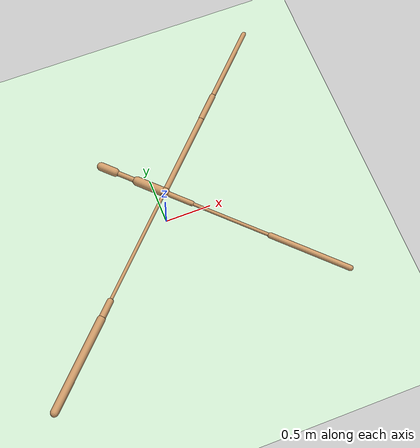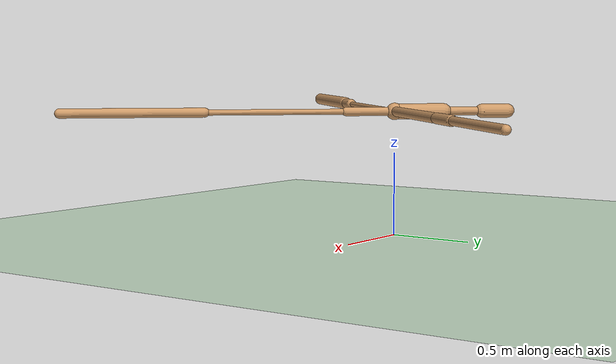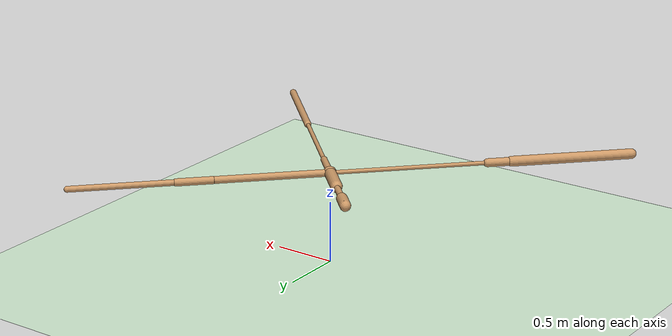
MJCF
<mujoco model="ant">
  <compiler angle="degree" coordinate="local" inertiafromgeom="true" />
  <option integrator="RK4" timestep="0.01" />
  <custom>
    <numeric data="0.0 0.0 0.55 1.0 0.0 0.0 0.0 0.0 1.0 0.0 -1.0 0.0 -1.0 0.0 1.0" name="init_qpos" />
  </custom>
  <default>
    <joint armature="1" damping="1" limited="true" />
    <geom conaffinity="0" condim="3" density="5.0" friction="1 0.5 0.5" margin="0.01" rgba="0.8 0.6 0.4 1" />
  </default>
  <asset>
    <texture builtin="gradient" height="100" rgb1="1 1 1" rgb2="0 0 0" type="skybox" width="100" />
    <texture builtin="flat" height="1278" mark="cross" markrgb="1 1 1" name="texgeom" random="0.01" rgb1="0.8 0.6 0.4" rgb2="0.8 0.6 0.4" type="cube" width="127" />
    <texture builtin="checker" height="100" name="texplane" rgb1="0 0 0" rgb2="0.8 0.8 0.8" type="2d" width="100" />
    <material name="MatPlane" reflectance="0.5" shininess="1" specular="1" texrepeat="60 60" texture="texplane" />
    <material name="geom" texture="texgeom" texuniform="true" />
  </asset>
  <worldbody>
    <light cutoff="100" diffuse="1 1 1" dir="-0 0 -1.3" directional="true" exponent="1" pos="0 0 1.3" specular=".1 .1 .1" />
    <geom conaffinity="1" condim="3" material="MatPlane" name="floor" pos="0 0 0" rgba="0.8 0.9 0.8 1" size="40 40 40" type="plane" />
    <body name="torso" pos="0 0 0.75">
      <camera name="track" mode="trackcom" pos="0 -11 5" xyaxes="1 0 0 0 0.5 1" />
      <geom name="torso_geom" pos="0 0 0" size="0.05129633843898773" type="sphere" />
      <joint armature="0" damping="0" limited="false" margin="0.01" name="root" pos="0 0 0" type="free" />
      <body name="front_left_leg" pos="0 0 0">
        <geom fromto="0 0 0 0.6434148550033569 0.6434148550033569 0" name="aux_1_geom" size="0.02896636351943016" type="capsule" />
        <body name="aux_1" pos="0.6434148550033569 0.6434148550033569 0">
          <joint axis="0 0 1" name="hip_1" pos="0.0 0.0 0.0" range="-30 30" type="hinge" />
          <geom fromto="0 0 0 0.2034931778907776 0.2034931778907776 0" name="left_leg_geom" size="0.02996273711323738" type="capsule" />
          <body name="left_leg_geom_aux" pos="0.2034931778907776 0.2034931778907776 0">
            <joint axis="-1 1 0" name="ankle_1" pos="0.0 0.0 0.0" range="30 70" type="hinge" />
            <geom fromto="0 0 0 0.587367057800293 0.587367057800293 0" name="left_ankle_geom" size="0.024242455139756203" type="capsule" />
          </body>
        </body>
      </body>
      <body name="front_right_leg" pos="0 0 0">
        <geom fromto="0 0 0 -0.21394264698028564 0.21394264698028564 0" name="aux_2_geom" size="0.04666571319103241" type="capsule" />
        <body name="aux_2" pos="-0.21394264698028564 0.21394264698028564 0">
          <joint axis="0 0 1" name="hip_2" pos="0.0 0.0 0.0" range="-30 30" type="hinge" />
          <geom fromto="0 0 0 -0.1725643277168274 0.1725643277168274 0" name="right_leg_geom" size="0.0253016147762537" type="capsule" />
          <body name="right_leg_geom_aux" pos="-0.1725643277168274 0.1725643277168274 0">
            <joint axis="1 1 0" name="ankle_2" pos="0.0 0.0 0.0" range="-70 -30" type="hinge" />
            <geom fromto="0 0 0 -0.11114168167114258 0.11114168167114258 0" name="right_ankle_geom" size="0.04291151463985443" type="capsule" />
          </body>
        </body>
      </body>
      <body name="back_leg" pos="0 0 0">
        <geom fromto="0 0 0 -0.889229416847229 -0.889229416847229 0" name="aux_3_geom" size="0.01662263832986355" type="capsule" />
        <body name="aux_3" pos="-0.889229416847229 -0.889229416847229 0">
          <joint axis="0 0 1" name="hip_3" pos="0.0 0.0 0.0" range="-30 30" type="hinge" />
          <geom fromto="0 0 0 -0.1369677484035492 -0.1369677484035492 0" name="back_leg_geom" size="0.03386656194925308" type="capsule" />
          <body name="back_leg_geom_aux" pos="-0.1369677484035492 -0.1369677484035492 0">
            <joint axis="-1 1 0" name="ankle_3" pos="0.0 0.0 0.0" range="-70 -30" type="hinge" />
            <geom fromto="0 0 0 -0.6953562498092651 -0.6953562498092651 0" name="third_ankle_geom" size="0.041060153394937515" type="capsule" />
          </body>
        </body>
      </body>
      <body name="right_back_leg" pos="0 0 0">
        <geom fromto="0 0 0 0.21034836769104004 -0.21034836769104004 0" name="aux_4_geom" size="0.02624805085361004" type="capsule" />
        <body name="aux_4" pos="0.21034836769104004 -0.21034836769104004 0">
          <joint axis="0 0 1" name="hip_4" pos="0.0 0.0 0.0" range="-30 30" type="hinge" />
          <geom fromto="0 0 0 0.5976094007492065 -0.5976094007492065 0" name="rightback_leg_geom" size="0.016998160630464554" type="capsule" />
          <body name="rightback_leg_geom_aux" pos="0.5976094007492065 -0.5976094007492065 0">
            <joint axis="1 1 0" name="ankle_4" pos="0.0 0.0 0.0" range="30 70" type="hinge" />
            <geom fromto="0 0 0 0.5935330390930176 -0.5935330390930176 0" name="fourth_ankle_geom" size="0.028348540887236595" type="capsule" />
          </body>
        </body>
      </body>
    </body>
  </worldbody>
  <actuator>
    <motor ctrllimited="true" ctrlrange="-1.0 1.0" joint="hip_4" gear="150" />
    <motor ctrllimited="true" ctrlrange="-1.0 1.0" joint="ankle_4" gear="150" />
    <motor ctrllimited="true" ctrlrange="-1.0 1.0" joint="hip_1" gear="150" />
    <motor ctrllimited="true" ctrlrange="-1.0 1.0" joint="ankle_1" gear="150" />
    <motor ctrllimited="true" ctrlrange="-1.0 1.0" joint="hip_2" gear="150" />
    <motor ctrllimited="true" ctrlrange="-1.0 1.0" joint="ankle_2" gear="150" />
    <motor ctrllimited="true" ctrlrange="-1.0 1.0" joint="hip_3" gear="150" />
    <motor ctrllimited="true" ctrlrange="-1.0 1.0" joint="ankle_3" gear="150" />
  </actuator>
</mujoco>
